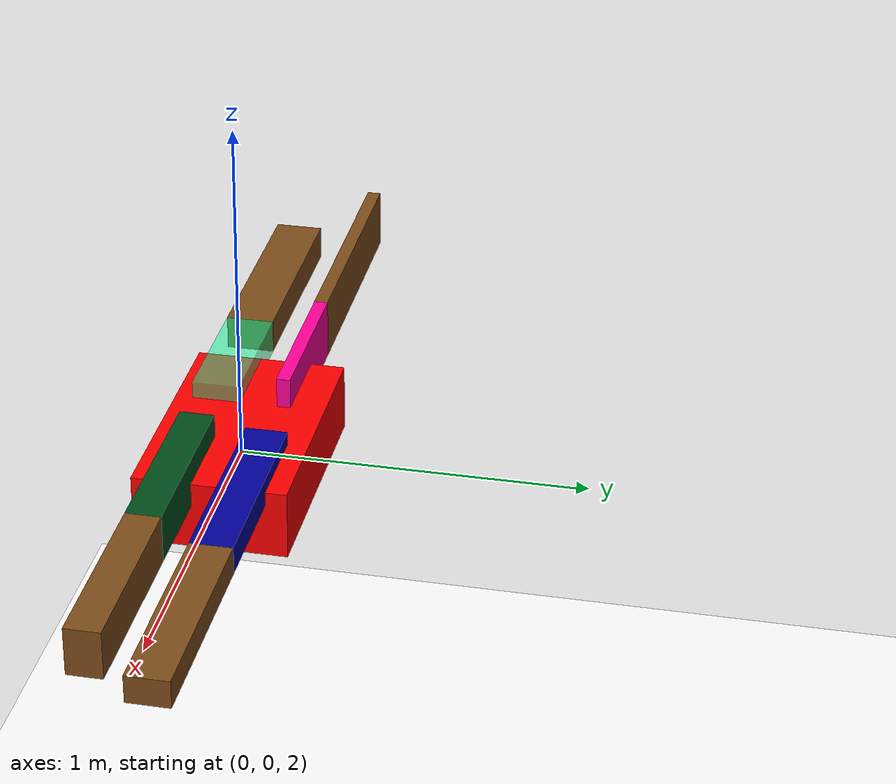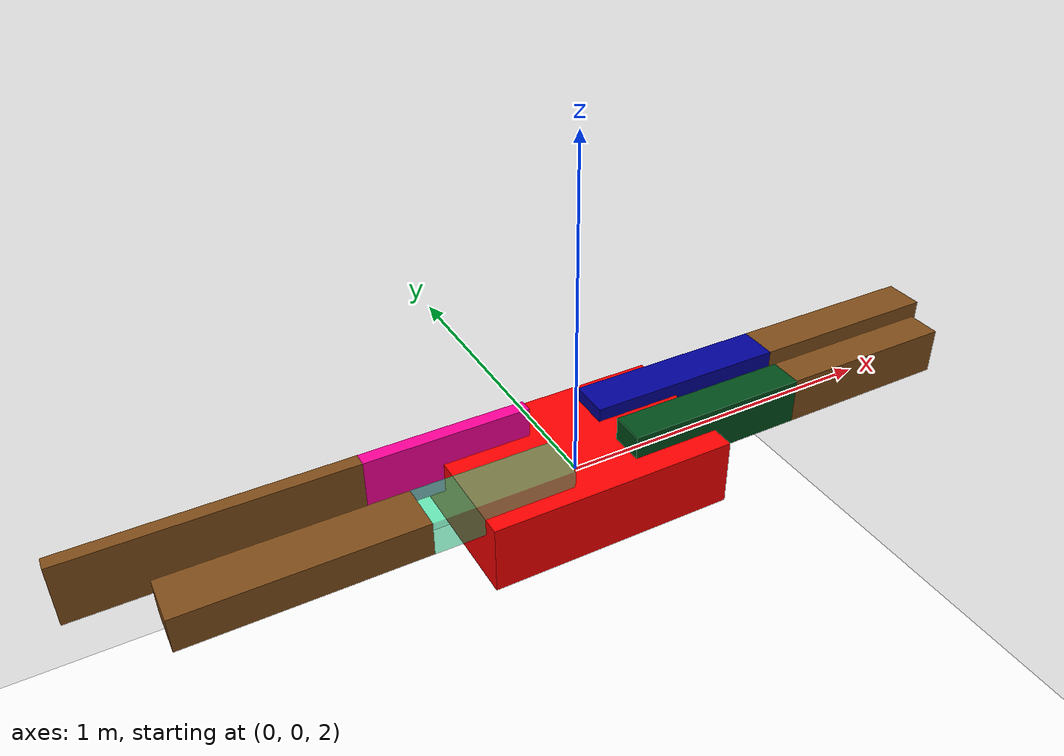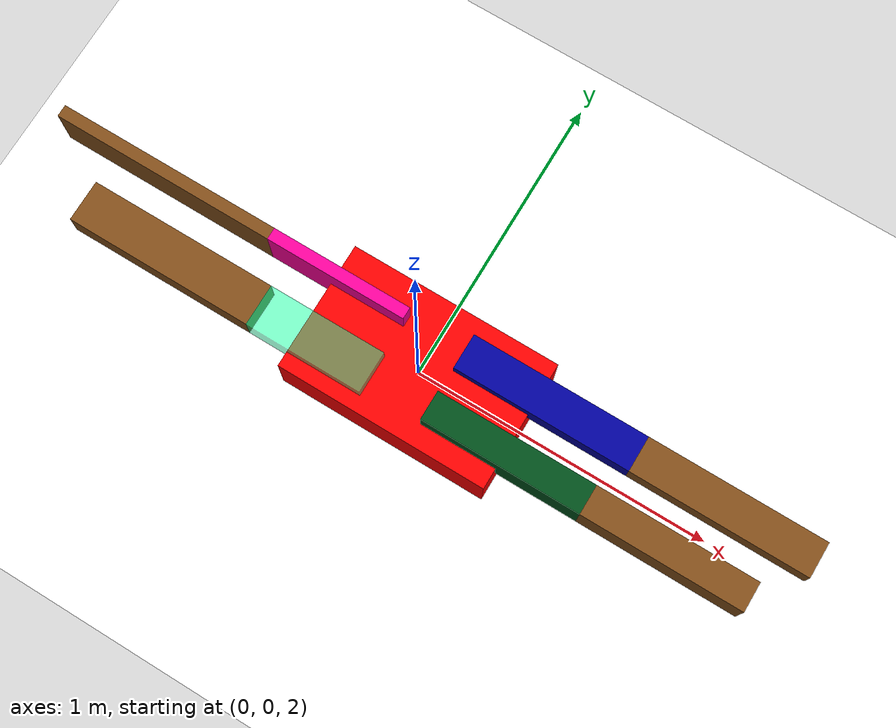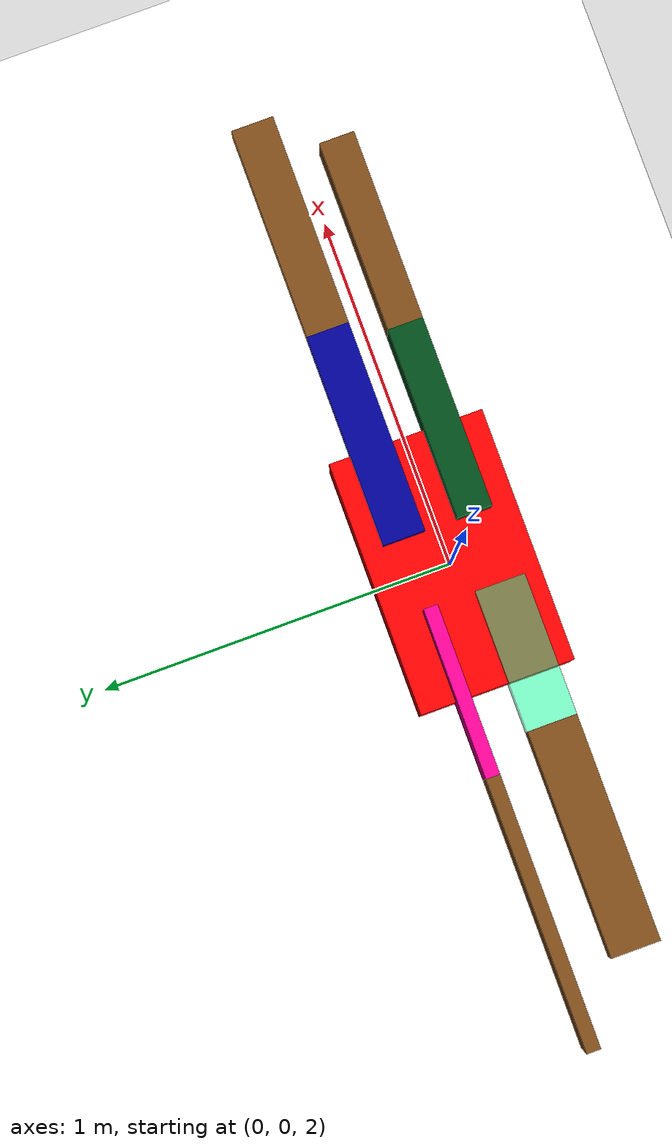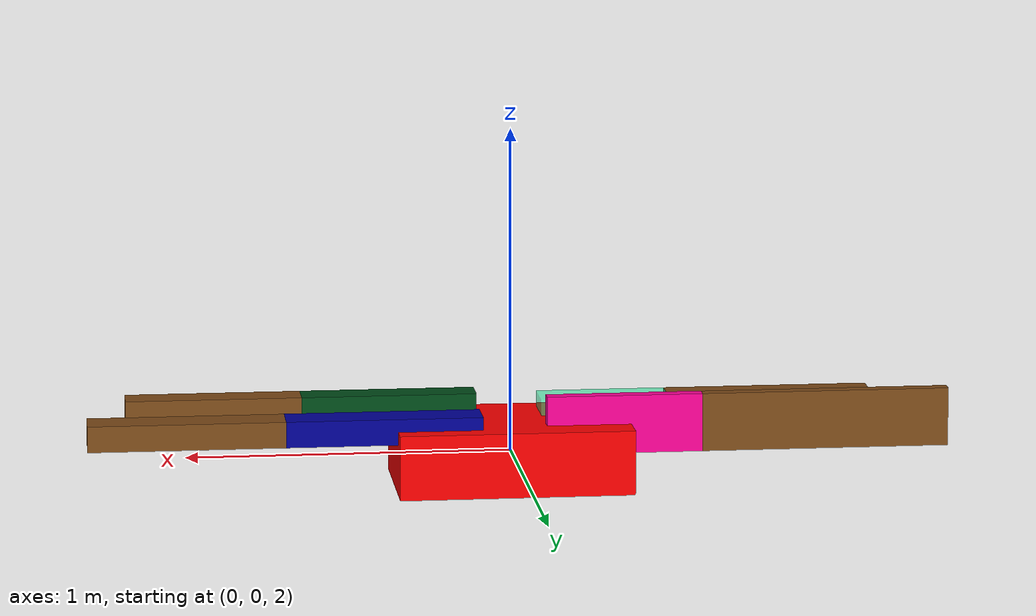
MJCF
<mujoco>
    <option gravity="0 0 -50.81" />
    <worldbody>
        <light diffuse="0.8 0.8 0.8" pos="0 0 8" dir="0 0 -1" />
        <geom type="plane" size="3 3 0.1" rgba="1 1 1 1" />

        <body name="main_body" pos="0 0 2">
            <joint name="main_body" type="free" />
            <geom type="box" size="0.1 0.36 0.22" rgba="1 0 0 1" euler="90 0 90" mass="40" />

            <body name="leg1" pos="-0.30000000000000004 -0.1 0.1" euler="0 90 0">
                <joint name="leg1-1" pos="0 0 0.2" type="hinge" axis="0 1 0" range="-45 45" />
                <geom type="box" size="0.05 0.07 0.2" rgba="0 1 0.6 0.5" mass="10" />
                <body name="shank1" pos="0 0 -0.5192568601155179">
                    <joint name="leg1-2" pos="0 0 0.3192568601155179" type="hinge" axis="0 1 0" range="-90 -70" />
                    <geom type="box" size="0.05 0.07 0.3192568601155179" rgba="0.5 0.3 0.1 1" mass="30" />
                </body>
            </body>

            <body name="leg2" pos="-0.33999999999999997 0.1 0.1" euler="0 90 0">
                <joint name="leg2-1" pos="0 0 0.24" type="hinge" axis="0 1 0" range="-45 45" />
                <geom type="box" size="0.09 0.02 0.24" rgba="1 0 0.6 1" mass="10" />
                <body name="shank2" pos="0 0 -0.6231082321386214">
                    <joint name="leg2-2" pos="0 0 0.38310823213862144" type="hinge" axis="0 1 0" range="-90 -70" />
                    <geom type="box" size="0.09 0.02 0.38310823213862144" rgba="0.5 0.3 0.1 1" mass="30" />
                </body>
            </body>

            <body name="leg3" pos="0.37 -0.1 0.1" euler="0 -90 0">
                <joint name="leg3-1" pos="0 0 0.27" type="hinge" axis="0 1 0" range="-45 45" />
                <geom type="box" size="0.07 0.05 0.27" rgba="0 0.3 0.1 1" mass="10" />
                <body name="shank3" pos="0 0 -0.54">
                    <joint name="leg3-2" pos="0 0 0.27" type="hinge" axis="0 1 0" range="70 90" />
                    <geom type="box" size="0.07 0.05 0.27" rgba="0.5 0.3 0.1 1" mass="30" />
                </body>
            </body>

            <body name="leg4" pos="0.4 0.1 0.1" euler="0 -90 0">
                <joint name="leg4-1" pos="0 0 0.3" type="hinge" axis="0 1 0" range="-45 45" />
                <geom type="box" size="0.04 0.06 0.3" rgba="0 0 0.6 1" mass="10" />
                <body name="shank4" pos="0 0 -0.6">
                    <joint name="leg4-2" pos="0 0 0.3" type="hinge" axis="0 1 0" range="70 90" />
                    <geom type="box" size="0.04 0.06 0.3" rgba="0.5 0.3 0.1 1" mass="30" />
                </body>
            </body>
        </body>

    </worldbody>
    <actuator>
        <motor joint="leg1-1" name="fl1j" />
        <motor joint="leg1-2" name="fl2j" />
        <motor joint="leg3-1" name="bl1j" />
        <motor joint="leg3-2" name="bl2j" />
        <motor joint="leg2-1" name="fr1j" />
        <motor joint="leg2-2" name="fr2j" />
        <motor joint="leg4-1" name="br1j" />
        <motor joint="leg4-2" name="br2j" />
    </actuator>
</mujoco>
